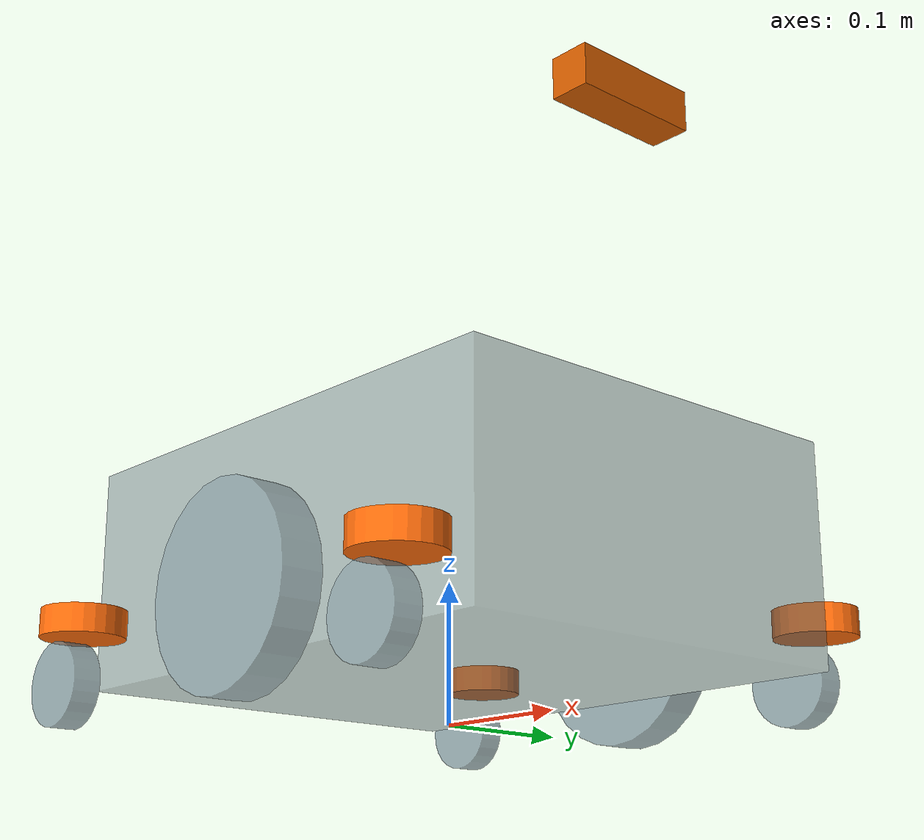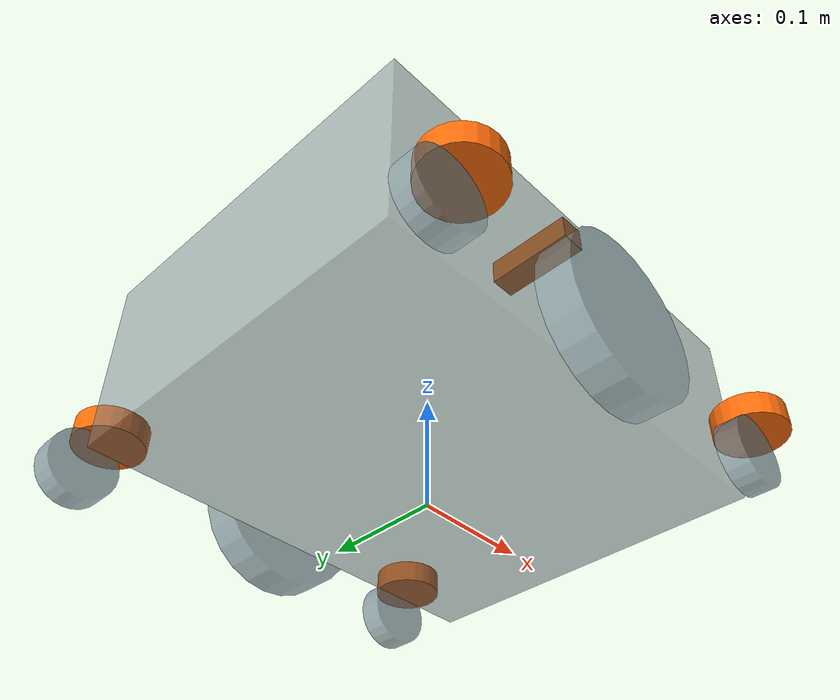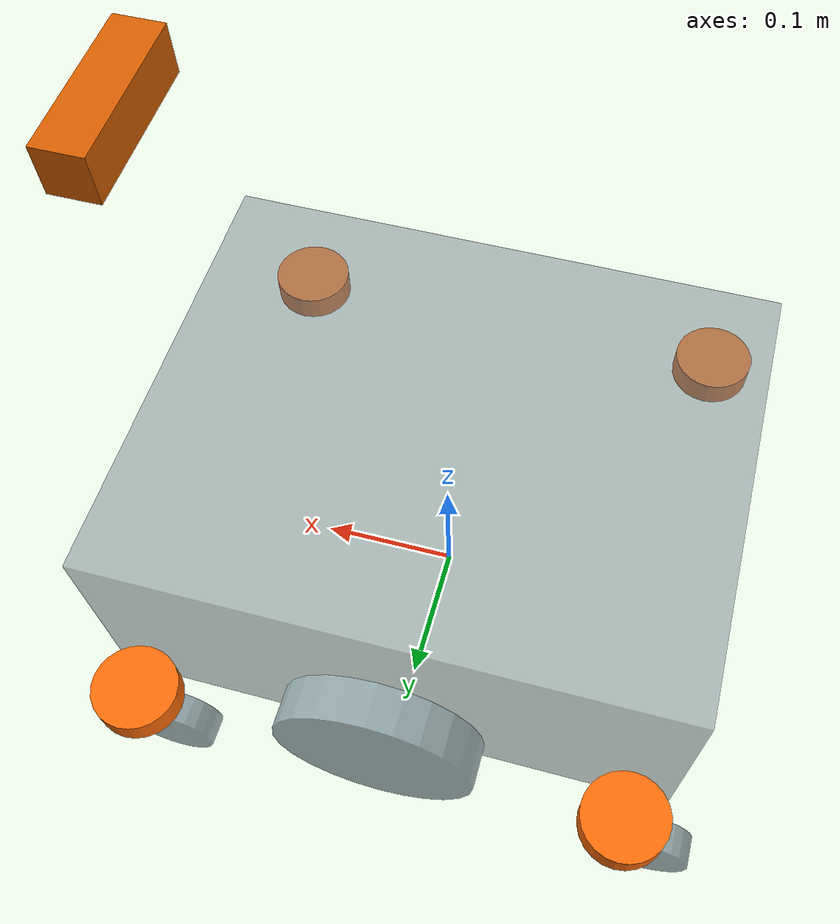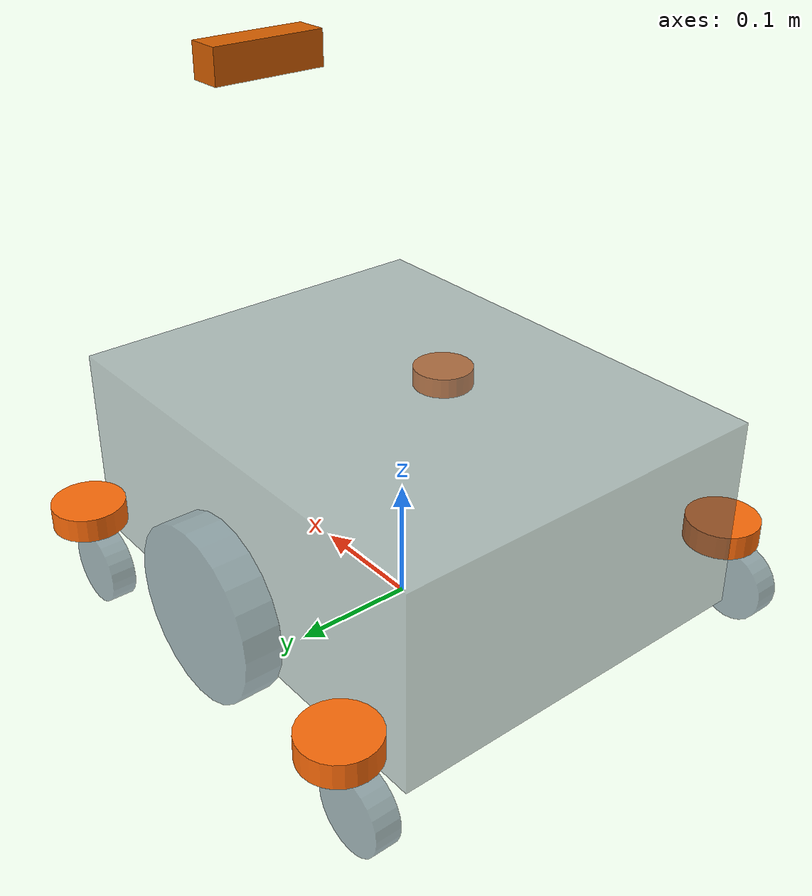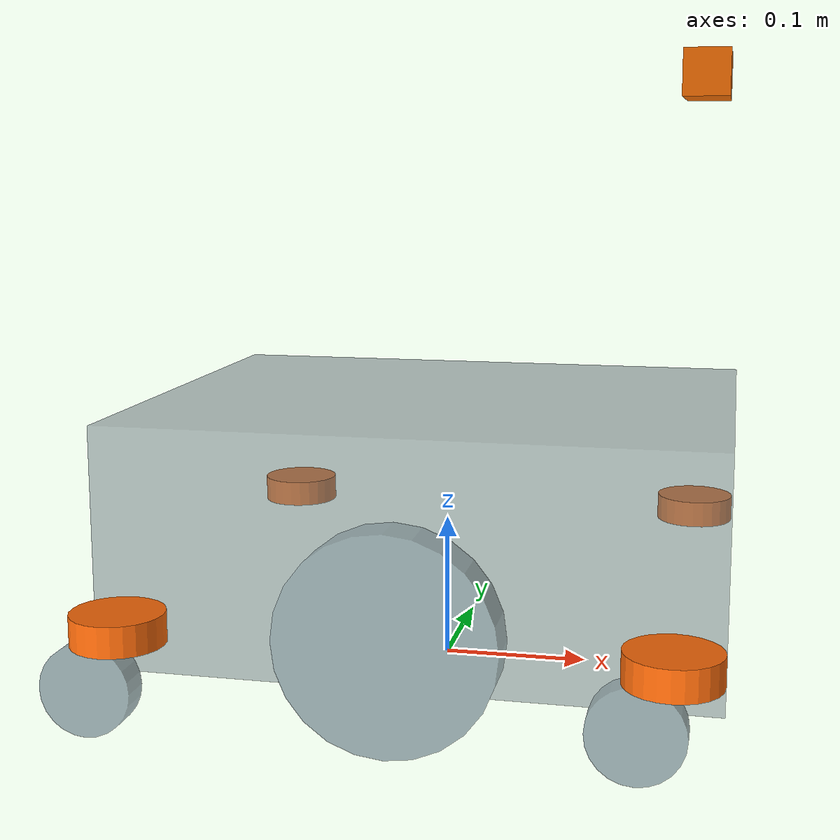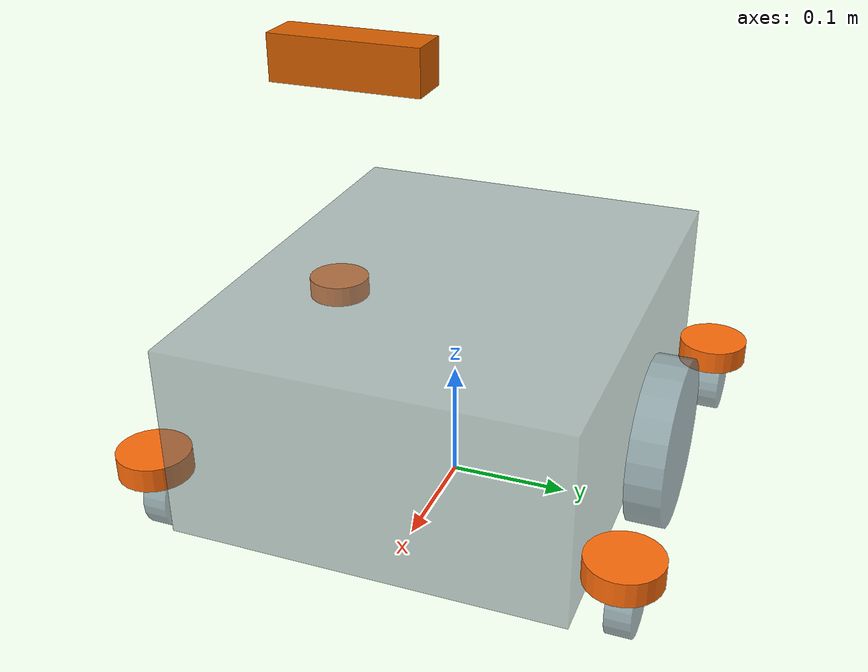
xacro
<?xml version="1.0" ?>

<robot name="test" xmlns:xacro="http://www.ros.org/wiki/xacro">
    <material name="black">
        <color rgba="0.0 0.0 0.0 1.0"/>
    </material>

    <material name="orange">
        <color rgba="1.0 0.423529411765 0.0392156862745 1.0"/>
    </material>

    <material name="TEST_COL">
        <color rgba="0.4196078431372549 0.48627450980392156 0.5215686274509804 0.5" />
    </material>

    <material name="TEST_COL_1">
        <color rgba="0.4549019607843137 0.5450980392156862 0.592156862745098 0.7" />
    </material>

    <xacro:arg name="velodyne_VLP-16_enable" default="false" />
    <xacro:arg name="velodyne_HDL-32E_enable" default="false" />
    <xacro:arg name="Ouster_os1_64_enable" default="false" />
    <xacro:arg name="Livox_avia_enable" default="false" />

    <xacro:include filename="$(find urdf_ex)/urdf/inertia_macro.urdf.xacro"/>
    <xacro:include filename="$(find urdf_ex)/urdf/gazebo.urdf.xacro"/>
    <xacro:include filename="$(find urdf_ex)/urdf/insert_transmission.urdf.xacro"/>

    <link name="base_footprint"/>

    <link name="base_link">
        <collision>
            <origin rpy="0 0 0" xyz="0 0 0"/>
            <geometry>
                <box size="0.40 0.32 0.16"/>
            </geometry>
        </collision>

        <visual>
            <origin rpy="0 0 0" xyz="0 0 0"/>
            <geometry>
                <box size="0.40 0.32 0.16"/>
            </geometry>
            <material name="TEST_COL"/>
        </visual>

        <inertial>
            <origin rpy="0 0 0" xyz="0 0 0"/>
            <mass value="30"/>
            <xacro:box_inertia m="30.0" x="0.32" y="0.40" z="0.16"/>
        </inertial>
    </link>

    <joint name="base_joint" type="fixed">
        <parent link="base_footprint"/>
        <origin rpy="0 0 0" xyz="0 0 0.11"/>
        <child link="base_link"/>
    </joint>

    <xacro:macro name="rear_caster" params = "prefix dir">
        <link name="rear_caster_rotate_${prefix}">
            <collision>
                <origin rpy="0 0 0" xyz="0 0 0"/>
                <geometry>
                    <cylinder length="0.02" radius="0.03"/>
                </geometry>
            </collision>

            <visual>
                <origin rpy="0 0 0" xyz="0 0 0"/>
                <geometry>
                <cylinder length="0.02" radius="0.03"/>
                </geometry>
                <material name="orange"/>
            </visual>

            <inertial>
                <origin rpy="0 0 0" xyz="0 0 0"/>
                <mass value="0.1"/>
                <xacro:cylinder_inertia m="0.1" r="0.03" h="0.02"/>
            </inertial>
        </link>

        <joint name="rear_caster_rotate_joint_${prefix}" type="continuous">
            <parent link="base_link"/>
            <child link="rear_caster_rotate_${prefix}"/>
            <origin rpy="0 0 0" xyz=" 0.17 ${dir*0.19} -0.04"/>
            <axis xyz="0 0 1"/>
        </joint>

        <link name="rear_caster_wheel_${prefix}">
            <collision>
                <origin xyz="0 0 0.0" rpy="0 0 0"/>
                <geometry>
                <cylinder length="0.02" radius="0.03"/>
                </geometry>
            </collision>

            <visual>
                <origin xyz="0 0 0.0" rpy="0 0 0"/>
                <geometry>
                <cylinder length="0.02" radius="0.03"/>
                </geometry>
                <material name="TEST_COL_1"/>
            </visual>

            <inertial>
                <origin xyz="0 0 0.0" rpy="0 0 0"/>
                <mass value="0.1"/>
                <xacro:cylinder_inertia m="0.1" r="0.03" h="0.02"/>
            </inertial>
        </link>

        <joint name="rear_caster_wheel_joint_${prefix}" type="continuous">
            <parent link="rear_caster_rotate_${prefix}"/>
            <child link="rear_caster_wheel_${prefix}"/>
            <origin rpy="0 1.57 1.57" xyz="-0.02 0 -0.04"/>
            <axis xyz="1 0 0"/>
            <limit effort="1000000" velocity="20.0"/>
        </joint>
    </xacro:macro>
    <xacro:rear_caster prefix="L" dir = "-1"/>
    <xacro:rear_caster prefix="R" dir = "1"/>

    <xacro:macro name="front_caster" params = "prefix dir">
        <link name="front_caster_rotate_${prefix}">
            <collision>
                <origin rpy="0 0 0" xyz="0 0 0"/>
                <geometry>
                    <cylinder length="0.02" radius="0.03"/>
                </geometry>
            </collision>

            <visual>
                <origin rpy="0 0 0" xyz="0 0 0"/>
                <geometry>
                <cylinder length="0.02" radius="0.03"/>
                </geometry>
                <material name="orange"/>
            </visual>

            <inertial>
                <origin rpy="0 0 0" xyz="0 0 0"/>
                <mass value="0.1"/>
                <xacro:cylinder_inertia m="0.1" r="0.03" h="0.02"/>
            </inertial>
        </link>

        <joint name="front_caster_rotate_joint_${prefix}" type="continuous">
            <parent link="base_link"/>
            <!--origin rpy="0 0 0" xyz="0.16 0.1 -0.015"/-->
            <child link="front_caster_rotate_${prefix}"/>
            <origin rpy="0 0 0" xyz="-0.17 ${dir*0.19} -0.04"/>
            <axis xyz="0 0 1"/>
        </joint>

        <link name="front_caster_wheel_${prefix}">
            <collision>
                <origin xyz="0 0 0.0" rpy="0 0 0"/>
                <geometry>
                <cylinder length="0.02" radius="0.03"/>
                </geometry>
            </collision>

            <visual>
                <origin xyz="0 0 0.0" rpy="0 0 0"/>
                <geometry>
                <cylinder length="0.02" radius="0.03"/>
                </geometry>
                <material name="TEST_COL_1"/>
            </visual>

            <inertial>
                <origin xyz="0 0 0.0" rpy="0 0 0"/>
                <mass value="0.1"/>
                <xacro:cylinder_inertia m="0.1" r="0.03" h="0.02"/>
            </inertial>
        </link>

        <joint name="front_caster_wheel_joint_${prefix}" type="continuous">
            <parent link="front_caster_rotate_${prefix}"/>
            <child link="front_caster_wheel_${prefix}"/>
            <origin rpy="0 1.57 1.57" xyz="-0.02 0 -0.04"/>
            <axis xyz="0 0 1"/>
            <limit effort="1000000" velocity="20.0"/>
        </joint>
    </xacro:macro>
    <xacro:front_caster prefix="L" dir = "-1"/>
    <xacro:front_caster prefix="R" dir = "1"/>

    <xacro:macro name="wheel" params = "prefix dir">
        <link name="Wheel_${prefix}">
            <collision>
                <origin rpy="0 0 0" xyz="0 0 0.0"/>
                <geometry>
                <cylinder length="0.03" radius="0.07"/>
                </geometry>
            </collision>

            <visual>
                <origin rpy="0 0 0" xyz="0 0 0.0"/>
                <geometry>
                <cylinder length="0.03" radius="0.07"/>
                </geometry>
                <material name="TEST_COL_1"/>
            </visual>

            <inertial>
                <origin rpy="0 0 0" xyz="0 0 0.0"/>
                <mass value="2"/>
                <xacro:cylinder_inertia m="2.0" r="0.07" h="0.03"/>
            </inertial>
        </link>

        <joint name="Wheel_joint_${prefix}" type="continuous">
            <parent link="base_link"/>
            <child link="Wheel_${prefix}"/>
            <origin rpy="0 1.57 1.57" xyz="0 ${dir*0.18} -0.04"/>
            <axis xyz="0 0 1"/>
            <limit effort="1000000" velocity="20.0"/>
        </joint>
    </xacro:macro>
    <xacro:wheel prefix="L" dir = "-1"/>
    <xacro:wheel prefix="R" dir = "1"/>

    <xacro:insert_velocity_transmission name="Wheel_joint_R"/>
    <xacro:insert_velocity_transmission name="Wheel_joint_L"/>

    <xacro:if value="$(arg velodyne_VLP-16_enable)">
        <xacro:include filename="$(find velodyne_description)/urdf/VLP-16.urdf.xacro"/>
        <xacro:VLP-16 parent="base_link" name="velodyne" topic="/velodyne_points" hz="10" samples="440" gpu="false">
            <origin xyz="0 0 0.08" rpy="0 0 0" />
        </xacro:VLP-16>
    </xacro:if>

    <xacro:if value="$(arg velodyne_HDL-32E_enable)">
        <xacro:include filename="$(find velodyne_description)/urdf/HDL-32E.urdf.xacro"/>
        <xacro:HDL-32E parent="base_link" name="velodyne" topic="/velodyne_points" hz="10" samples="440" gpu="false">
            <origin xyz="0 0 0.08" rpy="0 0 0" />
        </xacro:HDL-32E>
    </xacro:if>

    <xacro:if value="$(arg Ouster_os1_64_enable)">
        <xacro:include filename="$(find ouster_os1_64)/urdf/os1_64.urdf.xacro"/>
        <xacro:os1_64 parent="base_link" name="ouster" prefix="/velodyne_points" hz="10" samples="512">
            <origin xyz="0 0 0.35" rpy="0 0 0" />
        </xacro:os1_64>
    </xacro:if>

    <xacro:if value="$(arg Livox_avia_enable)">
        <joint name="joint1" type="fixed">
            <parent link="base_link"/>
            <child link="livox_base"/>
            <origin xyz="0.0 0 0.2" rpy="0 0 0" />
        </joint>

        <xacro:include filename="$(find livox_laser_simulation)/urdf/livox_avia.xacro"/>
        <xacro:Livox_AVIA name="livox"/>
    </xacro:if>

    <joint name="imu_joint" type="fixed">
            <parent link="base_link"/>
            <child link="imu_link"/>
            <origin xyz="0 0 0" rpy="0 0 0"/>
        </joint>

    <link name="imu_link"></link>

    <gazebo reference="imu_link">
        <gravity>true</gravity>
        <sensor name="imu_sensor" type="imu">
        <always_on>true</always_on>
        <update_rate>100</update_rate>
        <visualize>true</visualize>
        <topic>"imu"</topic>
        <plugin filename="libgazebo_ros_imu_sensor.so" name="imu_plugin">
            <topicName>imu</topicName>
            <bodyName>imu_link</bodyName>
            <updateRateHZ>100.0</updateRateHZ>
            <gaussianNoise>0.0</gaussianNoise>
            <xyzOffset>0 0 0</xyzOffset>
            <rpyOffset>0 0 0</rpyOffset>
            <frameName>imu_link</frameName>
            <initialOrientationAsReference>false</initialOrientationAsReference>
        </plugin>
        <pose>0 0 0 0 0 0</pose>
        </sensor>
    </gazebo>

    <!-- CAMERA -->
    <joint name="camera_joint" type="fixed">
        <parent link="base_link"/>
        <child link="camera_link"/>
        <origin xyz="0.175 0 0.30" rpy="0 0 0"/>
    </joint>

    <link name="camera_link">
        <visual>
            <geometry>
                <box size=" 0.03 0.1 0.03"/>
            </geometry>
        </visual>
        <collision>
            <geometry>
                <box size=" 0.03 0.1 0.03"/>
            </geometry>
        </collision>
    </link>

    <joint name="camera_optical_joint" type="fixed">
        <parent link="camera_link"/>
        <child link="camera_link_optical"/>
        <origin xyz="0 0 0" rpy="0 0 0"/>
    </joint>

    <link name="camera_link_optical">
    </link>

</robot>
